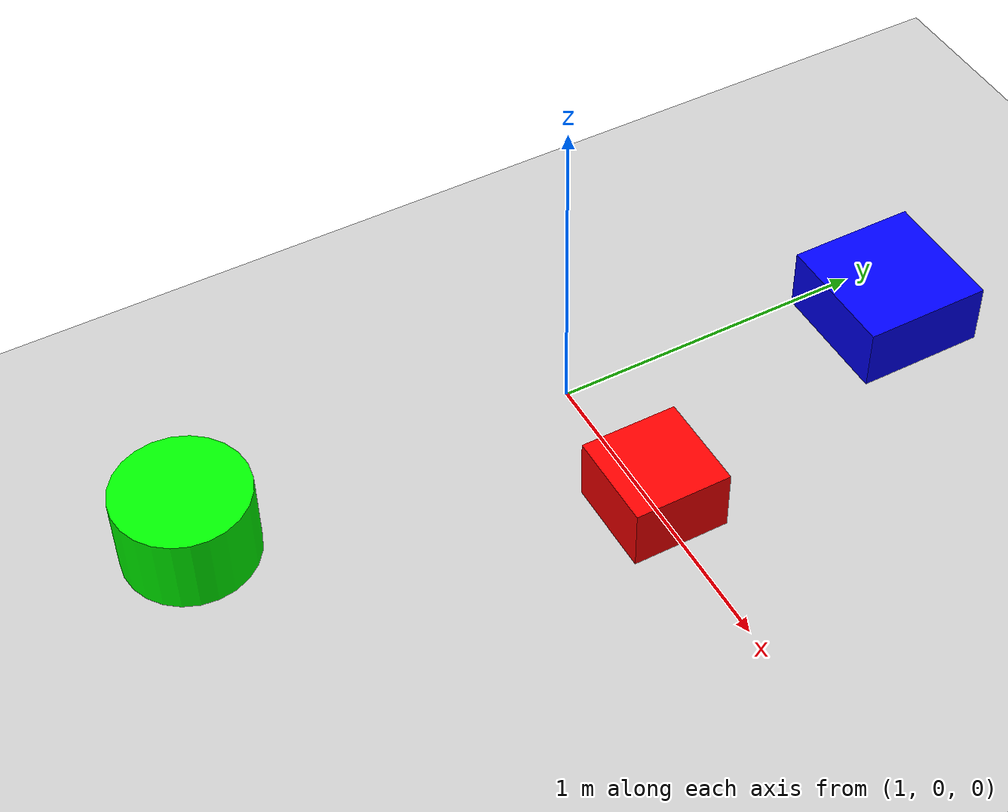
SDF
<?xml version="1.0" ?>
<sdf version="1.6">
  <world name="simple_obstacles">
    <plugin name='gazebo_ros_factory' filename='libgazebo_ros_factory.so'/>
    <include><uri>model://ground_plane</uri></include>
    <include><uri>model://sun</uri></include>

    <model name="obstacle_red">
      <static>true</static>
      <pose>1.5 0 0.1 0 0 0</pose>
      <link name="link">
        <collision name="collision"><geometry><box><size>0.3 0.3 0.2</size></box></geometry></collision>
        <visual name="visual"><geometry><box><size>0.3 0.3 0.2</size></box></geometry>
          <material><ambient>1 0 0 1</ambient><diffuse>1 0 0 1</diffuse></material>
        </visual>
      </link>
    </model>

    <model name="obstacle_green">
      <static>true</static>
      <pose>1.0 -1.2 0.1 0 0 0</pose>
      <link name="link">
        <collision name="collision"><geometry><cylinder><radius>0.2</radius><length>0.3</length></cylinder></geometry></collision>
        <visual name="visual"><geometry><cylinder><radius>0.2</radius><length>0.3</length></cylinder></geometry>
          <material><ambient>0 1 0 1</ambient><diffuse>0 1 0 1</diffuse></material>
        </visual>
      </link>
    </model>

    <model name="obstacle_blue">
      <static>true</static>
      <pose>1.2 1.0 0.1 0 0 0</pose>
      <link name="link">
        <collision name="collision"><geometry><box><size>0.4 0.4 0.2</size></box></geometry></collision>
        <visual name="visual"><geometry><box><size>0.4 0.4 0.2</size></box></geometry>
          <material><ambient>0 0 1 1</ambient><diffuse>0 0 1 1</diffuse></material>
        </visual>
      </link>
    </model>
  </world>
</sdf>
